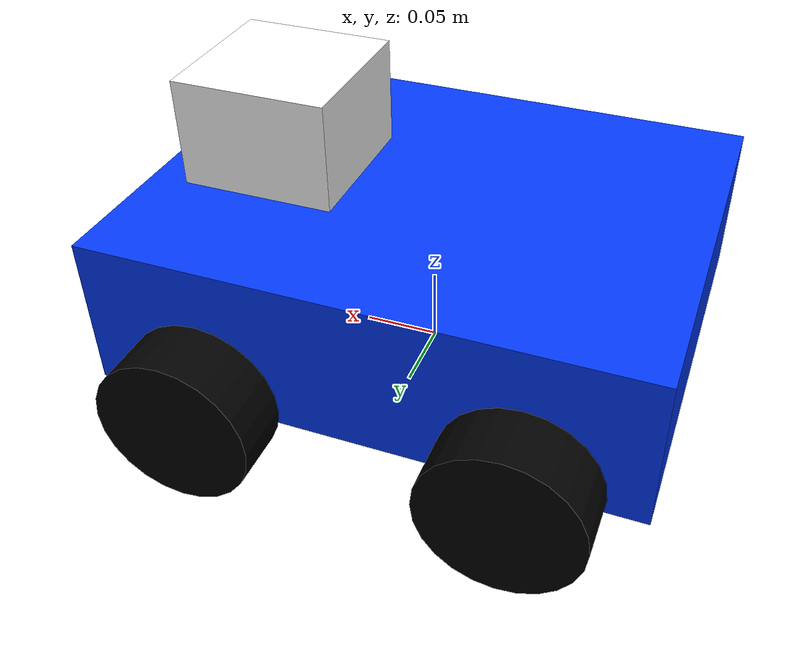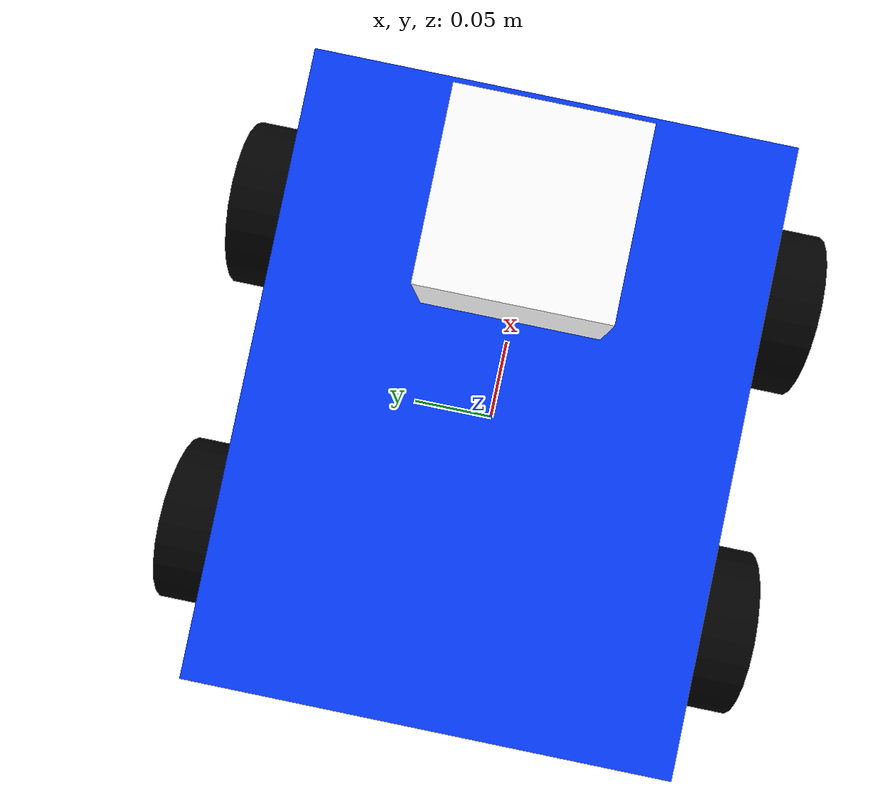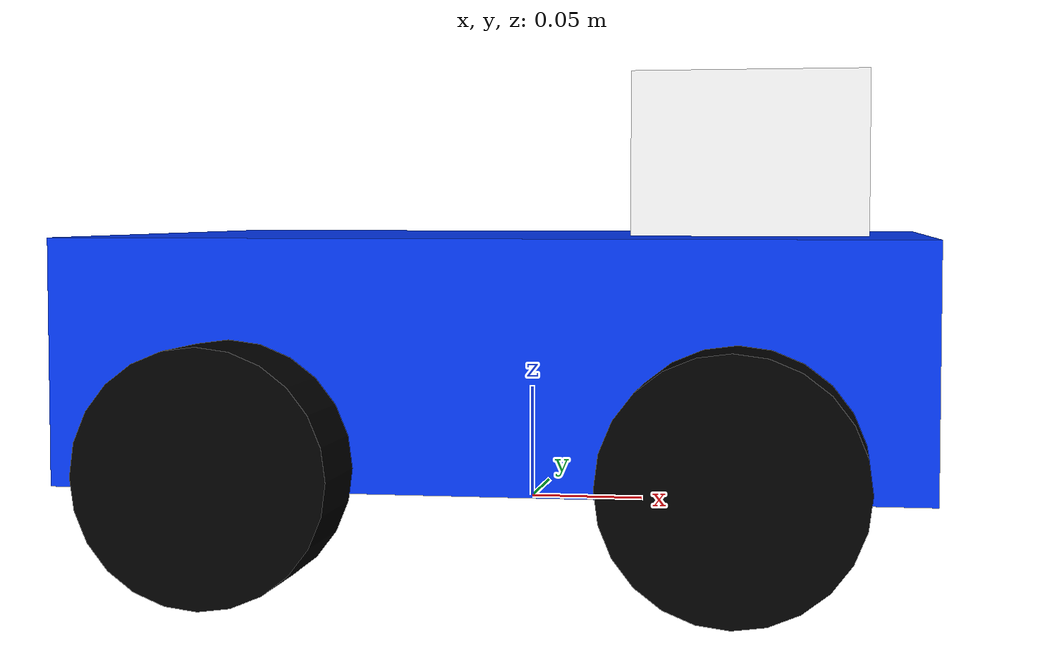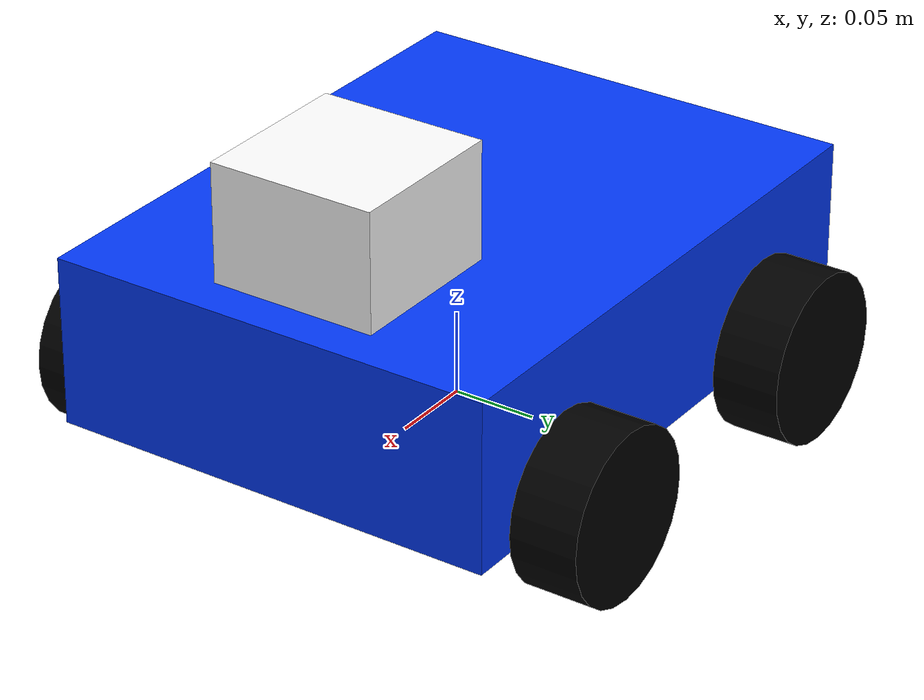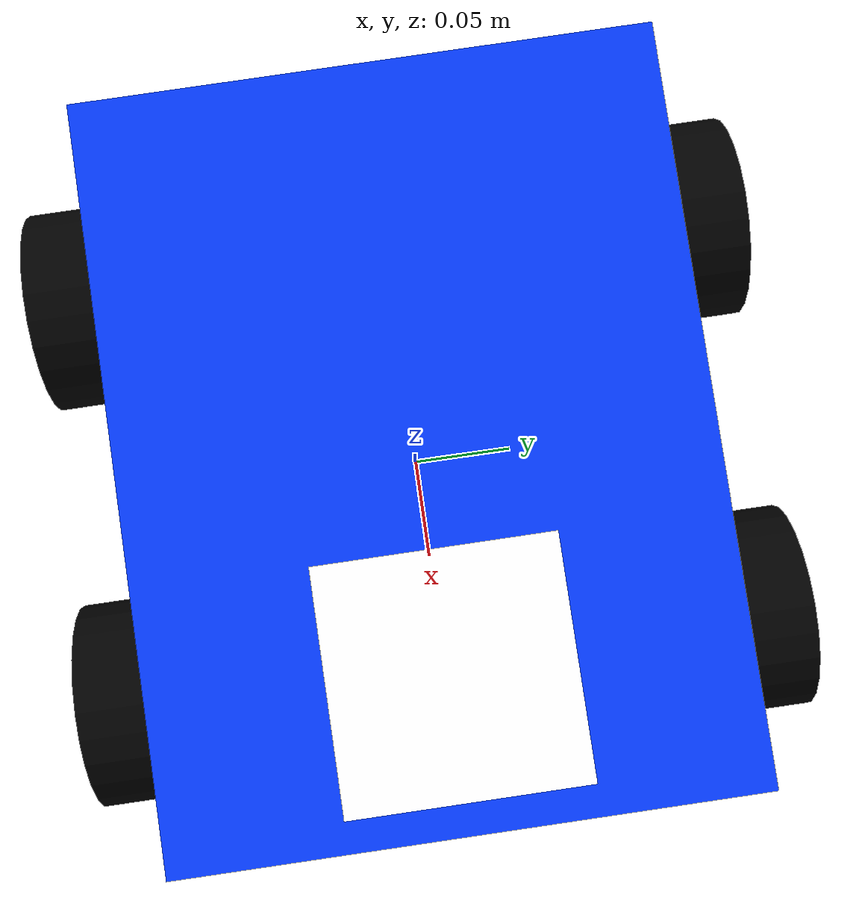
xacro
<?xml version="1.0"?>
<robot name="bunny_with_camera" xmlns:xacro="http://ros.org/wiki/xacro">

<!-- This are the colors used in the design of the robot -->

  <material name="blue">
    <color rgba="0 0 0.8 1"/>
  </material>

  <material name="black">
    <color rgba="0 0 0 1"/>
  </material>

  <material name="white">
    <color rgba="1 1 1 1"/>
  </material>

  <material name="vibrantblue" >
    <color rgba="0.011764705882352941 0.2235294117647059 0.9725490196078431 1.0" />
  </material>

<!--The gazebo plugins -->

<gazebo reference="base_link">
   <material>Gazebo/Blue</material>
</gazebo>
<gazebo reference="front_wheel_right">
   <material>Gazebo/Black</material>
</gazebo>
<gazebo reference="front_wheel_left">
   <material>Gazebo/Black</material>
</gazebo>
<gazebo reference="rear_wheel_right">
   <material>Gazebo/Black</material>
</gazebo>
<gazebo reference="rear_wheel_left">
   <material>Gazebo/Black</material>
</gazebo>
<gazebo reference="laser_sensor_link">
   <material>Gazebo/White</material>
</gazebo>

<gazebo>
  <plugin name="skid_steer_drive_controller" filename="libgazebo_ros_skid_steer_drive.so">
    <updateRate>10.0</updateRate>
    <robotNamespace>/</robotNamespace>
    <leftFrontJoint>base_link_to_front_wheel_left</leftFrontJoint>
    <rightFrontJoint>base_link_to_front_wheel_right</rightFrontJoint>
    <leftRearJoint>base_link_to_rear_wheel_left</leftRearJoint>
    <rightRearJoint>base_link_to_rear_wheel_right</rightRearJoint>
    <wheelSeparation>0.4</wheelSeparation>
    <wheelDiameter>0.215</wheelDiameter>
    <robotBaseFrame>base_footprint</robotBaseFrame>
    <torque>20</torque>
    <topicName>/cmd_vel</topicName>
    <broadcastTF>true</broadcastTF>
    <odometryTopic>/odom</odometryTopic>
    <odometryFrame>odom</odometryFrame>
    <odometryRate>10.0</odometryRate>
</plugin>
</gazebo>

<gazebo reference="camera_link">
  <sensor name="depth_camera" type="depth">
    <update_rate>10</update_rate>
    <camera>
      <horizontal_fov>1.047198</horizontal_fov>
      <image>
        <width>640</width>
        <height>480</height>
        <format>R8G8B8</format>
      </image>
      <clip>
        <near>0.05</near>
        <far>3</far>
      </clip>
    </camera>
    <plugin name="camera_link_controller" filename="libgazebo_ros_openni_kinect.so">
      <baseline>0.2</baseline>
      <alwaysOn>true</alwaysOn>
      <updateRate>1.0</updateRate>
      <cameraName>depth_camera_ir</cameraName>
      <imageTopicName>/depth_camera/color/image_raw</imageTopicName>
      <cameraInfoTopicName>/depth_camera/color/camera_info</cameraInfoTopicName>
      <depthImageTopicName>/depth_camera/depth/image_raw</depthImageTopicName>
      <depthImageInfoTopicName>/depth_camera/depth/camera_info</depthImageInfoTopicName>
      <pointCloudTopicName>/depth_camera/depth/points</pointCloudTopicName>
      <frameName>camera_link</frameName>
      <pointCloudCutoff>0.5</pointCloudCutoff>
      <pointCloudCutoffMax>3.0</pointCloudCutoffMax>
      <distortionK1>0.00000001</distortionK1>
      <distortionK2>0.00000001</distortionK2>
      <distortionK3>0.00000001</distortionK3>
      <distortionT1>0.00000001</distortionT1>
      <distortionT2>0.00000001</distortionT2>
      <CxPrime>0</CxPrime>
      <Cx>0</Cx>
      <Cy>0</Cy>
      <focalLength>0</focalLength>
      <hackBaseline>0</hackBaseline>
    </plugin>
  </sensor>
</gazebo>

<!-- These are the description of a 3D model of a robot -->
<link name="base_footprint">
    <origin rpy="0 0 0" xyz="0 0 0"/>
</link>

<link name="base_link">
   <visual>
      <geometry>
         <box size= "0.35 0.27 0.1"/>
      </geometry>
      <origin rpy="0 0 0" xyz="0 0 0"/>
      <material name="vibrantblue"/>
   </visual>
   <collision name="collision_chasis">
      <geometry>
         <box size="0.35 0.27 0.1"/>
      </geometry>
      <material name="vibrantblue"/>
   </collision>
   <inertial>
      <mass value="1.0"/>
      <inertia ixx="1.5e-3" iyy="4.1667e-3" izz="5.4167e-4"
         ixy="0" ixz="0" iyz="0"/>
   </inertial>
  </link>

    <joint name="chassis" type="fixed">
        <axis xyz="0 0 0"/>
        <parent link="base_footprint"/>
        <child link="base_link"/>
        <origin rpy="0 0 0" xyz="0 0 0.07"/>
    </joint>

  <link name="front_wheel_right">
      <visual>
         <geometry>
            <cylinder length="0.04" radius="0.05"/>
         </geometry>
         <origin rpy="0 1.57079633 1.57079633" xyz="0.0 0.0 0.0"/>
         <material name="black"/>
      </visual>
      <collision name="front_wheel_right_collision">
         <geometry>
            <cylinder length="0.04" radius="0.05"/>
         </geometry>
         <origin rpy="0 1.57079633 1.57079633" xyz="0.0 0.0 0.0"/>
      </collision>
      <inertial>
         <mass value="0.1"/>
         <origin rpy="0 1.57079633 0" xyz="0.0 0.0 0.0"/>
         <inertia ixx="5.333e-5" iyy="5.333e-5" izz="8.00e-5"
         ixy="0" ixz="0" iyz="0"/>
      </inertial>
  </link>

  <joint name="base_link_to_front_wheel_right" type="continuous">
    <axis xyz="0 1 0"/>
    <parent link="base_link"/>
    <child link="front_wheel_right"/>
    <origin rpy="0 0 0" xyz="0.1 -0.155 -0.04"/>
  </joint>

  <link name="front_wheel_left">
      <visual>
         <geometry>
            <cylinder length="0.04" radius="0.05"/>
         </geometry>
         <origin rpy="0 1.57079633 1.57079633" xyz="0.0 0.0 0.0"/>
         <material name="black"/>
      </visual>
      <collision name="front_wheel_left_collision">
         <geometry>
            <cylinder length="0.04" radius="0.05"/>
         </geometry>
         <origin rpy="0 1.57079633 1.57079633" xyz="0.0 0.0 0.0"/>
      </collision>
      <inertial>
         <mass value="0.1"/>
         <origin rpy="0 1.57079633 0" xyz="0.0 0.0 0.0"/>
         <inertia ixx="5.333e-5" iyy="5.333e-5" izz="8.00e-5"
         ixy="0" ixz="0" iyz="0"/>
      </inertial>
  </link>

  <joint name="base_link_to_front_wheel_left" type="continuous">
    <axis xyz="0 1 0"/>
    <parent link="base_link"/>
    <child link="front_wheel_left"/>
    <origin rpy="0 0 0" xyz="0.1 0.155 -0.04"/>
  </joint>

    <link name="rear_wheel_right">
      <visual>
         <geometry>
            <cylinder length="0.04" radius="0.05"/>
         </geometry>
         <origin rpy="0 1.57079633 1.57079633" xyz="0.0 0.0 0.0"/>
         <material name="black"/>
      </visual>
      <collision name="rear_wheel_right_collision">
         <geometry>
            <cylinder length="0.04" radius="0.05"/>
         </geometry>
         <origin rpy="0 1.57079633 1.57079633" xyz="0.0 0.0 0.0"/>
      </collision>
      <inertial>
         <mass value="0.1"/>
         <origin rpy="0 1.57079633 0" xyz="0.0 0.0 0.0"/>
         <inertia ixx="5.333e-5" iyy="5.333e-5" izz="8.00e-5"
         ixy="0" ixz="0" iyz="0"/>
      </inertial>
  </link>

  <joint name="base_link_to_rear_wheel_right" type="continuous">
    <axis xyz="0 1 0"/>
    <parent link="base_link"/>
    <child link="rear_wheel_right"/>
    <origin rpy="0 0 0" xyz="-0.1 -0.155 -0.04"/>
  </joint>

      <link name="rear_wheel_left">
      <visual>
         <geometry>
            <cylinder length="0.04" radius="0.05"/>
         </geometry>
         <origin rpy="0 1.57079633 1.57079633" xyz="0.0 0.0 0.0"/>
         <material name="black"/>
      </visual>
      <collision name="rear_wheel_left_collision">
         <geometry>
            <cylinder length="0.04" radius="0.05"/>
         </geometry>
         <origin rpy="0 1.57079633 1.57079633" xyz="0.0 0.0 0.0"/>
      </collision>
      <inertial>
         <mass value="0.1"/>
         <origin rpy="0 1.57079633 0" xyz="0.0 0.0 0.0"/>
         <inertia ixx="5.333e-5" iyy="5.333e-5" izz="8.00e-5"
         ixy="0" ixz="0" iyz="0"/>
      </inertial>
  </link>

  <joint name="base_link_to_rear_wheel_left" type="continuous">
    <axis xyz="0 1 0"/>
    <parent link="base_link"/>
    <child link="rear_wheel_left"/>
    <origin rpy="0 0 0" xyz="-0.1 0.155 -0.04"/>
  </joint>

  <link name="camera_optical_link">
    <visual>
      <origin rpy="0 0 0" xyz="0 0 0"/>
      <geometry>
        <box size="0.1 0.1 0.1"/>
      </geometry>
      <material name="white"/>
    </visual>

    <collision name="collision_camera_link">
     <geometry>
      <box size="0.1 0.1 0.1"/>
     </geometry>
    </collision>
  </link>

  <link name="camera_link">
  </link>

  <joint name="base_link_to_depth_sensor" type="fixed">
    <axis xyz="0 0 0"/>
    <parent link="base_link"/>
    <child link="camera_link"/>
    <origin rpy="-1.57 0 -1.57" xyz="0.1 0 0.07"/>
  </joint>

  <joint name="camera_optical_link_joint" type="fixed">
      <axis xyz="0 0 0"/>
      <parent link="camera_link"/>
      <child link="camera_optical_link"/>
      <origin rpy="0 0 0" xyz="0 0 0 "/>
   </joint>

</robot>
